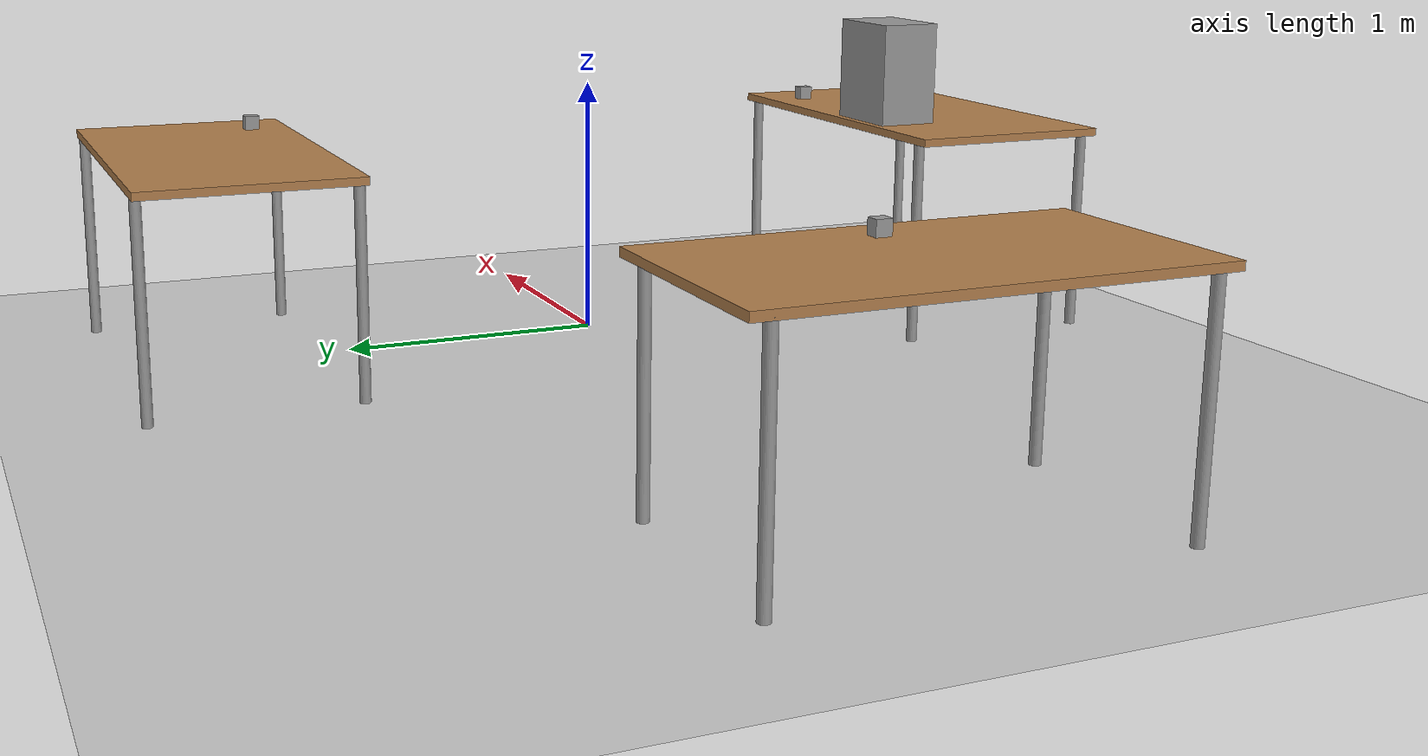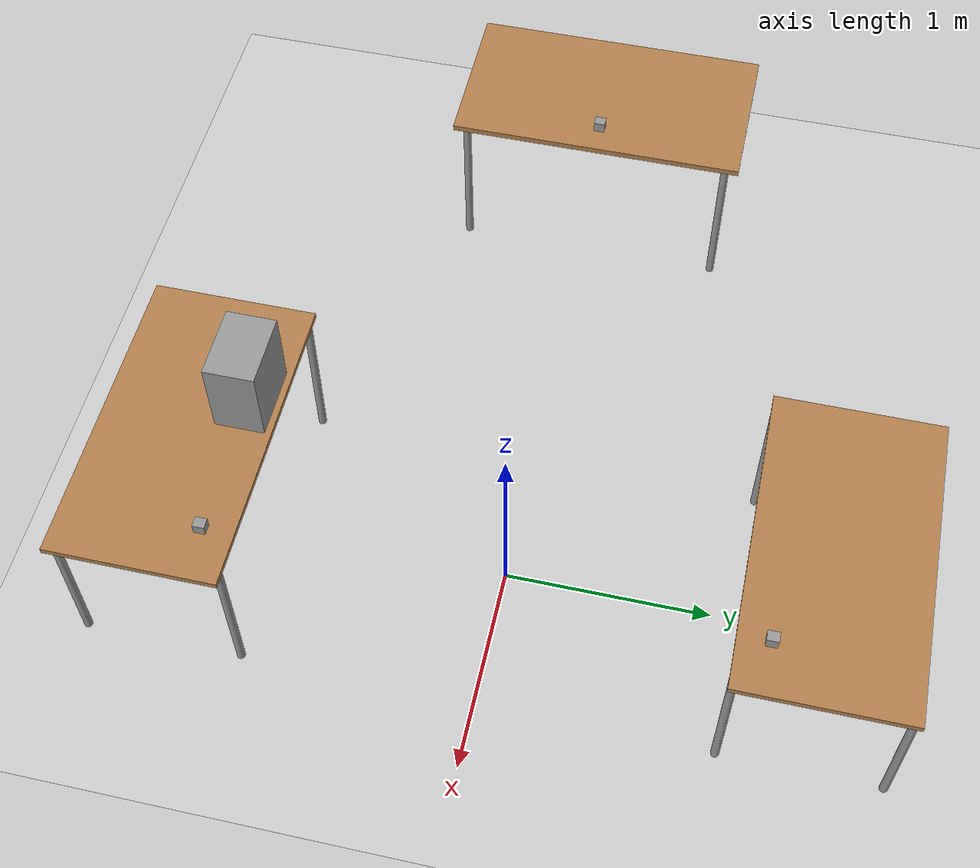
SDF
<sdf version="1.6">
 <world name="default">
  <plugin name="ros_link_attacher_plugin" filename="libgazebo_ros_link_attacher.so"/>
  <light name="sun" type="directional">
   <pose>0 0 10 0 -0 0</pose>
   <diffuse>0.8 0.8 0.8 1</diffuse>
   <specular>0.2 0.2 0.2 1</specular>
   <attenuation>
    <range>1000</range>
    <constant>0.9</constant>
    <linear>0.01</linear>
    <quadratic>0.001</quadratic>
   </attenuation>
   <direction>-0.5 0.1 -0.9</direction>
  </light>
  <model name="ground_plane">
   <static>1</static>
   <link name="link">
    <collision name="collision">
     <geometry><plane><normal>0 0 1</normal><size>100 100</size></plane></geometry>
     <surface><friction><ode><mu>100</mu><mu2>50</mu2></ode></friction></surface>
    </collision>
    <visual name="visual">
     <cast_shadows>0</cast_shadows>
     <geometry><plane><normal>0 0 1</normal><size>100 100</size></plane></geometry>
     <material>
      <script><uri>file://media/materials/scripts/gazebo.material</uri><name>Gazebo/Grey</name></script>
     </material>
    </visual>
   </link>
  </model>
  <gravity>0 0 -9.8</gravity>
  <magnetic_field>6e-06 2.3e-05 -4.2e-05</magnetic_field>
  <atmosphere type="adiabatic"/>
  <physics name="default_physics" default="0" type="ode">
   <max_step_size>0.001</max_step_size>
   <real_time_factor>1</real_time_factor>
   <real_time_update_rate>1000</real_time_update_rate>
  </physics>
  <scene><ambient>0.4 0.4 0.4 1</ambient><background>0.7 0.7 0.7 1</background><shadows>1</shadows></scene>
  <audio><device>default</device></audio>
  <spherical_coordinates>
   <surface_model>EARTH_WGS84</surface_model>
   <latitude_deg>0</latitude_deg>
   <longitude_deg>0</longitude_deg>
   <elevation>0</elevation>
   <heading_deg>0</heading_deg>
  </spherical_coordinates>
  <model name="table">
   <static>1</static>
   <link name="link">
    <collision name="surface">
     <pose>0 0 1 0 -0 0</pose>
     <geometry><box><size>1.5 0.8 0.03</size></box></geometry>
     <surface><friction><ode><mu>0.6</mu><mu2>0.6</mu2></ode></friction></surface>
    </collision>
    <visual name="visual1">
     <pose>0 0 1 0 -0 0</pose>
     <geometry><box><size>1.5 0.8 0.03</size></box></geometry>
     <material>
      <script><uri>file://media/materials/scripts/gazebo.material</uri><name>Gazebo/Wood</name></script>
     </material>
    </visual>
    <collision name="front_left_leg">
     <pose>0.68 0.38 0.5 0 -0 0</pose>
     <geometry><cylinder><radius>0.02</radius><length>1</length></cylinder></geometry>
    </collision>
    <visual name="front_left_leg">
     <pose>0.68 0.38 0.5 0 -0 0</pose>
     <geometry><cylinder><radius>0.02</radius><length>1</length></cylinder></geometry>
     <material>
      <script><uri>file://media/materials/scripts/gazebo.material</uri><name>Gazebo/Grey</name></script>
     </material>
    </visual>
    <collision name="front_right_leg">
     <pose>0.68 -0.38 0.5 0 -0 0</pose>
     <geometry><cylinder><radius>0.02</radius><length>1</length></cylinder></geometry>
    </collision>
    <visual name="front_right_leg">
     <pose>0.68 -0.38 0.5 0 -0 0</pose>
     <geometry><cylinder><radius>0.02</radius><length>1</length></cylinder></geometry>
     <material>
      <script><uri>file://media/materials/scripts/gazebo.material</uri><name>Gazebo/Grey</name></script>
     </material>
    </visual>
    <collision name="back_right_leg">
     <pose>-0.68 -0.38 0.5 0 -0 0</pose>
     <geometry><cylinder><radius>0.02</radius><length>1</length></cylinder></geometry>
    </collision>
    <visual name="back_right_leg">
     <pose>-0.68 -0.38 0.5 0 -0 0</pose>
     <geometry><cylinder><radius>0.02</radius><length>1</length></cylinder></geometry>
     <material>
      <script><uri>file://media/materials/scripts/gazebo.material</uri><name>Gazebo/Grey</name></script>
     </material>
    </visual>
    <collision name="back_left_leg">
     <pose>-0.68 0.38 0.5 0 -0 0</pose>
     <geometry><cylinder><radius>0.02</radius><length>1</length></cylinder></geometry>
    </collision>
    <visual name="back_left_leg">
     <pose>-0.68 0.38 0.5 0 -0 0</pose>
     <geometry><cylinder><radius>0.02</radius><length>1</length></cylinder></geometry>
     <material>
      <script><uri>file://media/materials/scripts/gazebo.material</uri><name>Gazebo/Grey</name></script>
     </material>
    </visual>
   </link>
   <pose>-2.5 0 -0.2 0 -0 1.5708</pose>
  </model>
  <model name="table_clone">
   <static>1</static>
   <link name="link">
    <collision name="surface">
     <pose>0 0 1 0 -0 0</pose>
     <geometry><box><size>1.5 0.8 0.03</size></box></geometry>
     <surface><friction><ode><mu>0.6</mu><mu2>0.6</mu2></ode></friction></surface>
    </collision>
    <visual name="visual1">
     <pose>0 0 1 0 -0 0</pose>
     <geometry><box><size>1.5 0.8 0.03</size></box></geometry>
     <material>
      <script><uri>file://media/materials/scripts/gazebo.material</uri><name>Gazebo/Wood</name></script>
     </material>
    </visual>
    <collision name="front_left_leg">
     <pose>0.68 0.38 0.5 0 -0 0</pose>
     <geometry><cylinder><radius>0.02</radius><length>1</length></cylinder></geometry>
    </collision>
    <visual name="front_left_leg">
     <pose>0.68 0.38 0.5 0 -0 0</pose>
     <geometry><cylinder><radius>0.02</radius><length>1</length></cylinder></geometry>
     <material>
      <script><uri>file://media/materials/scripts/gazebo.material</uri><name>Gazebo/Grey</name></script>
     </material>
    </visual>
    <collision name="front_right_leg">
     <pose>0.68 -0.38 0.5 0 -0 0</pose>
     <geometry><cylinder><radius>0.02</radius><length>1</length></cylinder></geometry>
    </collision>
    <visual name="front_right_leg">
     <pose>0.68 -0.38 0.5 0 -0 0</pose>
     <geometry><cylinder><radius>0.02</radius><length>1</length></cylinder></geometry>
     <material>
      <script><uri>file://media/materials/scripts/gazebo.material</uri><name>Gazebo/Grey</name></script>
     </material>
    </visual>
    <collision name="back_right_leg">
     <pose>-0.68 -0.38 0.5 0 -0 0</pose>
     <geometry><cylinder><radius>0.02</radius><length>1</length></cylinder></geometry>
    </collision>
    <visual name="back_right_leg">
     <pose>-0.68 -0.38 0.5 0 -0 0</pose>
     <geometry><cylinder><radius>0.02</radius><length>1</length></cylinder></geometry>
     <material>
      <script><uri>file://media/materials/scripts/gazebo.material</uri><name>Gazebo/Grey</name></script>
     </material>
    </visual>
    <collision name="back_left_leg">
     <pose>-0.68 0.38 0.5 0 -0 0</pose>
     <geometry><cylinder><radius>0.02</radius><length>1</length></cylinder></geometry>
    </collision>
    <visual name="back_left_leg">
     <pose>-0.68 0.38 0.5 0 -0 0</pose>
     <geometry><cylinder><radius>0.02</radius><length>1</length></cylinder></geometry>
     <material>
      <script><uri>file://media/materials/scripts/gazebo.material</uri><name>Gazebo/Grey</name></script>
     </material>
    </visual>
   </link>
   <pose>0 1.5 -0.2 0 -0 0</pose>
  </model>
  <model name="table_clone_0">
   <static>1</static>
   <link name="link">
    <collision name="surface">
     <pose>0 0 1 0 -0 0</pose>
     <geometry><box><size>1.5 0.8 0.03</size></box></geometry>
     <surface><friction><ode><mu>0.6</mu><mu2>0.6</mu2></ode></friction></surface>
    </collision>
    <visual name="visual1">
     <pose>0 0 1 0 -0 0</pose>
     <geometry><box><size>1.5 0.8 0.03</size></box></geometry>
     <material>
      <script><uri>file://media/materials/scripts/gazebo.material</uri><name>Gazebo/Wood</name></script>
     </material>
    </visual>
    <collision name="front_left_leg">
     <pose>0.68 0.38 0.5 0 -0 0</pose>
     <geometry><cylinder><radius>0.02</radius><length>1</length></cylinder></geometry>
    </collision>
    <visual name="front_left_leg">
     <pose>0.68 0.38 0.5 0 -0 0</pose>
     <geometry><cylinder><radius>0.02</radius><length>1</length></cylinder></geometry>
     <material>
      <script><uri>file://media/materials/scripts/gazebo.material</uri><name>Gazebo/Grey</name></script>
     </material>
    </visual>
    <collision name="front_right_leg">
     <pose>0.68 -0.38 0.5 0 -0 0</pose>
     <geometry><cylinder><radius>0.02</radius><length>1</length></cylinder></geometry>
    </collision>
    <visual name="front_right_leg">
     <pose>0.68 -0.38 0.5 0 -0 0</pose>
     <geometry><cylinder><radius>0.02</radius><length>1</length></cylinder></geometry>
     <material>
      <script><uri>file://media/materials/scripts/gazebo.material</uri><name>Gazebo/Grey</name></script>
     </material>
    </visual>
    <collision name="back_right_leg">
     <pose>-0.68 -0.38 0.5 0 -0 0</pose>
     <geometry><cylinder><radius>0.02</radius><length>1</length></cylinder></geometry>
    </collision>
    <visual name="back_right_leg">
     <pose>-0.68 -0.38 0.5 0 -0 0</pose>
     <geometry><cylinder><radius>0.02</radius><length>1</length></cylinder></geometry>
     <material>
      <script><uri>file://media/materials/scripts/gazebo.material</uri><name>Gazebo/Grey</name></script>
     </material>
    </visual>
    <collision name="back_left_leg">
     <pose>-0.68 0.38 0.5 0 -0 0</pose>
     <geometry><cylinder><radius>0.02</radius><length>1</length></cylinder></geometry>
    </collision>
    <visual name="back_left_leg">
     <pose>-0.68 0.38 0.5 0 -0 0</pose>
     <geometry><cylinder><radius>0.02</radius><length>1</length></cylinder></geometry>
     <material>
      <script><uri>file://media/materials/scripts/gazebo.material</uri><name>Gazebo/Grey</name></script>
     </material>
    </visual>
   </link>
   <pose>0 -1.5 -0.2 0 -0 0</pose>
  </model>
  <model name="box_1">
   <pose>0.499885 1.25001 0.842077 -1.1e-05 1e-06 0.001903</pose>
   <link name="link">
    <inertial>
     <mass>0.01</mass>
     <inertia>
      <ixx>0.166667</ixx>
      <ixy>0</ixy>
      <ixz>0</ixz>
      <iyy>0.166667</iyy>
      <iyz>0</iyz>
      <izz>0.166667</izz>
     </inertia>
    </inertial>
    <collision name="collision">
     <geometry><box><size>0.048929 0.055126 0.054172</size></box></geometry>
    </collision>
    <visual name="visual">
     <geometry><box><size>0.048929 0.055126 0.054172</size></box></geometry>
     <material>
      <script><name>Gazebo/Grey</name><uri>file://media/materials/scripts/gazebo.material</uri></script>
     </material>
    </visual>
   </link>
  </model>
  <model name="box_2">
   <pose>-2.25003 1e-06 0.842103 -0 -0.001041 -0.000114</pose>
   <link name="link">
    <inertial>
     <mass>0.01</mass>
     <inertia>
      <ixx>0.166667</ixx>
      <ixy>0</ixy>
      <ixz>0</ixz>
      <iyy>0.166667</iyy>
      <iyz>0</iyz>
      <izz>0.166667</izz>
     </inertia>
    </inertial>
    <collision name="collision">
     <geometry><box><size>0.048929 0.055126 0.054172</size></box></geometry>
    </collision>
    <visual name="visual">
     <geometry><box><size>0.048929 0.055126 0.054172</size></box></geometry>
     <material>
      <script><name>Gazebo/Grey</name><uri>file://media/materials/scripts/gazebo.material</uri></script>
     </material>
    </visual>
   </link>
  </model>
  <model name="box_3">
   <pose>0.499996 -1.25 0.84209 6e-06 -0.000157 2.4e-05</pose>
   <link name="link">
    <inertial>
     <mass>0.01</mass>
     <inertia>
      <ixx>0.166667</ixx>
      <ixy>0</ixy>
      <ixz>0</ixz>
      <iyy>0.166667</iyy>
      <iyz>0</iyz>
      <izz>0.166667</izz>
     </inertia>
    </inertial>
    <collision name="collision">
     <geometry><box><size>0.048929 0.055126 0.054172</size></box></geometry>
    </collision>
    <visual name="visual">
     <geometry><box><size>0.048929 0.055126 0.054172</size></box></geometry>
     <material>
      <script><name>Gazebo/Grey</name><uri>file://media/materials/scripts/gazebo.material</uri></script>
     </material>
    </visual>
   </link>
  </model>
  <model name="box_obstacle">
   <pose>-0.210613 -1.25 1.01724 -3e-06 1e-06 9.6e-05</pose>
   <link name="link">
    <inertial>
     <mass>1</mass>
     <inertia>
      <ixx>0.166667</ixx>
      <ixy>0</ixy>
      <ixz>0</ixz>
      <iyy>0.166667</iyy>
      <iyz>0</iyz>
      <izz>0.166667</izz>
     </inertia>
    </inertial>
    <collision name="collision">
     <geometry><box><size>0.343825 0.238068 0.404483</size></box></geometry>
    </collision>
    <visual name="visual">
     <geometry><box><size>0.343825 0.238068 0.404483</size></box></geometry>
     <material>
      <script><name>Gazebo/Grey</name><uri>file://media/materials/scripts/gazebo.material</uri></script>
     </material>
    </visual>
   </link>
  </model>
 </world>
</sdf>
